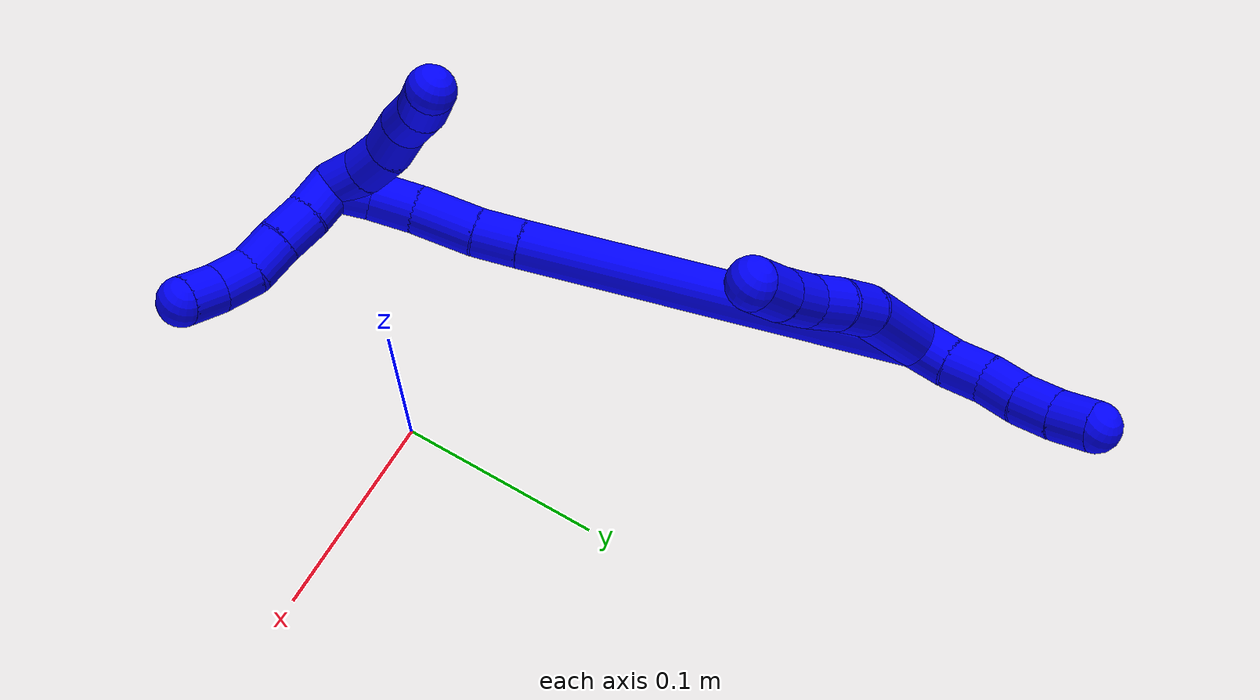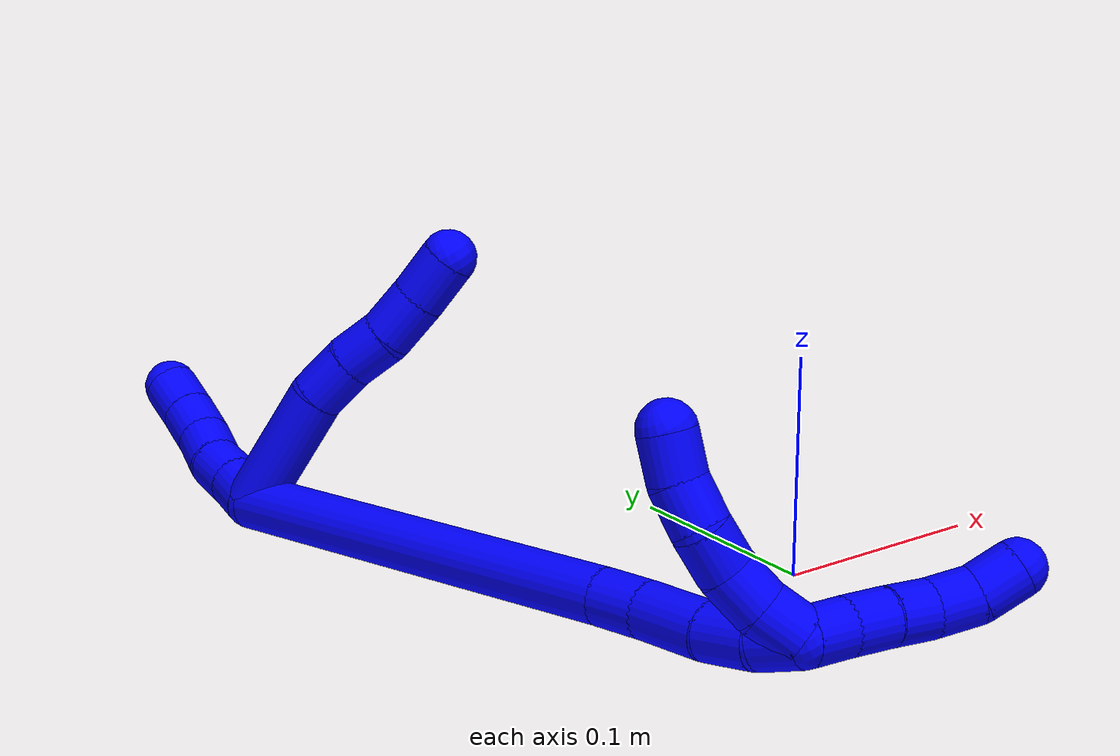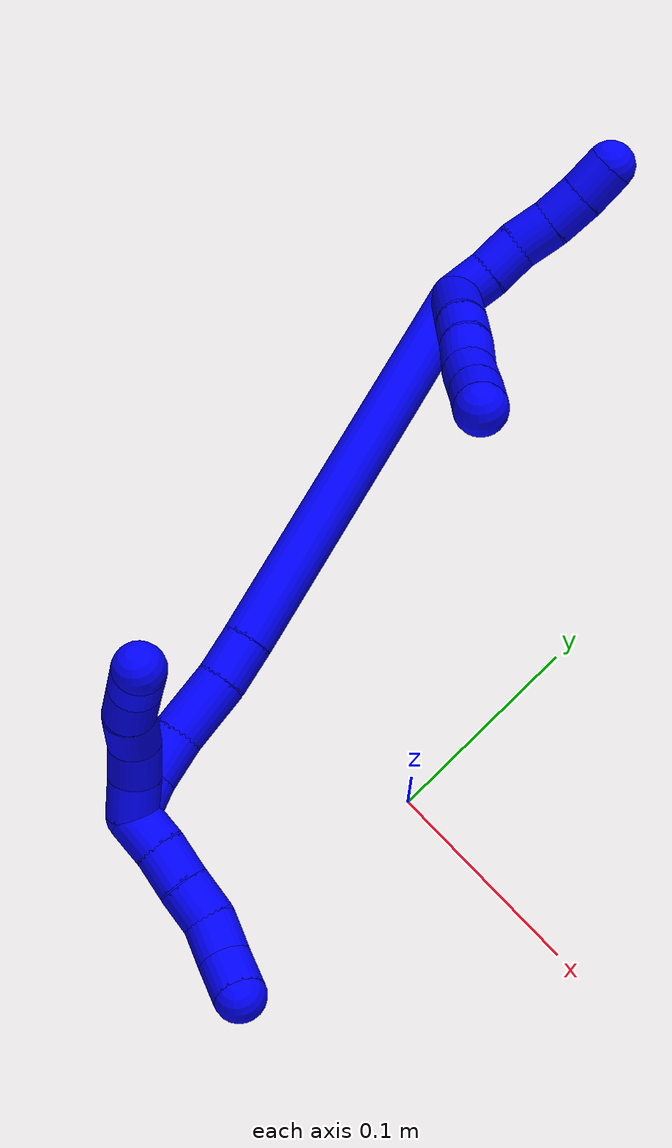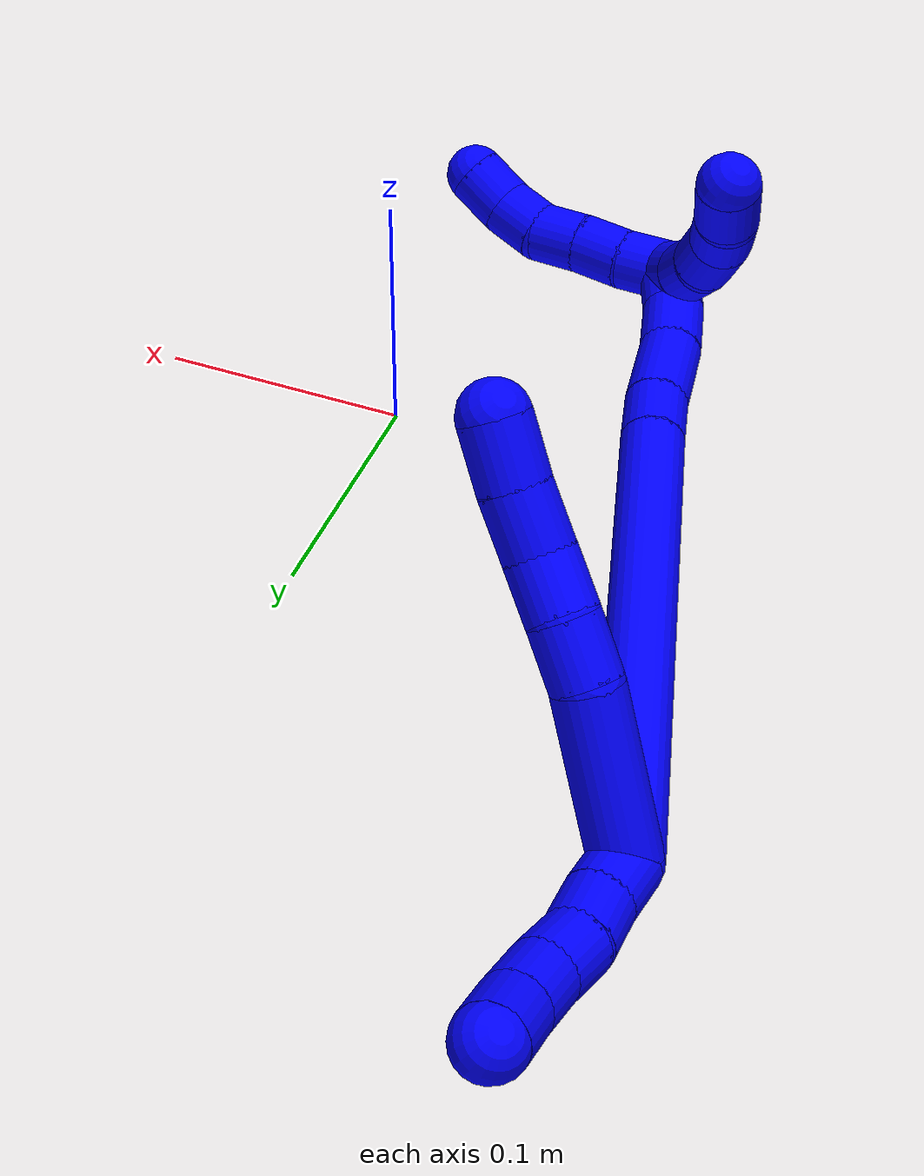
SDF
<sdf version="1.7">
 <world name="default">
  <model name="1">
   <static>0</static>
   <link name="1">
    <collision name="collision-cylinder-e_1_2_8">
     <pose>0.017997 -0.017629 0.016981 0.804104 0.63399 0.277201</pose>
     <geometry><cylinder><radius>0.0125</radius><length>0.060762</length></cylinder></geometry>
     <surface>
      <friction><ode><mu>1.16</mu><mu2>1.16</mu2><slip1>0</slip1><slip2>0</slip2></ode></friction>
      <contact><ode><kp>1e+06</kp><kd>1</kd><max_vel>0</max_vel><min_depth>0.001</min_depth></ode></contact>
     </surface>
    </collision>
    <visual name="visual-cylinder-e_1_2_8">
     <pose>0.017997 -0.017629 0.016981 0.804104 0.63399 0.277201</pose>
     <geometry><cylinder><radius>0.0125</radius><length>0.060762</length></cylinder></geometry>
     <material><ambient>0 0 1 1</ambient></material>
    </visual>
    <collision name="collision-cylinder-e_2_8_9">
     <pose>0.043613 -0.042377 0.038052 1.04939 0.748079 0.446804</pose>
     <geometry><cylinder><radius>0.0125</radius><length>0.022403</length></cylinder></geometry>
     <surface>
      <friction><ode><mu>1.16</mu><mu2>1.16</mu2><slip1>0</slip1><slip2>0</slip2></ode></friction>
      <contact><ode><kp>1e+06</kp><kd>1</kd><max_vel>0</max_vel><min_depth>0.001</min_depth></ode></contact>
     </surface>
    </collision>
    <visual name="visual-cylinder-e_2_8_9">
     <pose>0.043613 -0.042377 0.038052 1.04939 0.748079 0.446804</pose>
     <geometry><cylinder><radius>0.0125</radius><length>0.022403</length></cylinder></geometry>
     <material><ambient>0 0 1 1</ambient></material>
    </visual>
    <collision name="collision-cylinder-e_3_9_10">
     <pose>0.058343 -0.056909 0.044534 1.25863 0.73992 0.550387</pose>
     <geometry><cylinder><radius>0.0125</radius><length>0.021094</length></cylinder></geometry>
     <surface>
      <friction><ode><mu>1.16</mu><mu2>1.16</mu2><slip1>0</slip1><slip2>0</slip2></ode></friction>
      <contact><ode><kp>1e+06</kp><kd>1</kd><max_vel>0</max_vel><min_depth>0.001</min_depth></ode></contact>
     </surface>
    </collision>
    <visual name="visual-cylinder-e_3_9_10">
     <pose>0.058343 -0.056909 0.044534 1.25863 0.73992 0.550387</pose>
     <geometry><cylinder><radius>0.0125</radius><length>0.021094</length></cylinder></geometry>
     <material><ambient>0 0 1 1</ambient></material>
    </visual>
    <collision name="collision-cylinder-e_4_10_11">
     <pose>0.07337 -0.071004 0.051713 0.949192 0.766576 0.408549</pose>
     <geometry><cylinder><radius>0.0125</radius><length>0.022823</length></cylinder></geometry>
     <surface>
      <friction><ode><mu>1.16</mu><mu2>1.16</mu2><slip1>0</slip1><slip2>0</slip2></ode></friction>
      <contact><ode><kp>1e+06</kp><kd>1</kd><max_vel>0</max_vel><min_depth>0.001</min_depth></ode></contact>
     </surface>
    </collision>
    <visual name="visual-cylinder-e_4_10_11">
     <pose>0.07337 -0.071004 0.051713 0.949192 0.766576 0.408549</pose>
     <geometry><cylinder><radius>0.0125</radius><length>0.022823</length></cylinder></geometry>
     <material><ambient>0 0 1 1</ambient></material>
    </visual>
    <collision name="collision-cylinder-e_5_11_6">
     <pose>0.088642 -0.084578 0.061948 0.901842 0.697062 0.348311</pose>
     <geometry><cylinder><radius>0.0125</radius><length>0.022919</length></cylinder></geometry>
     <surface>
      <friction><ode><mu>1.16</mu><mu2>1.16</mu2><slip1>0</slip1><slip2>0</slip2></ode></friction>
      <contact><ode><kp>1e+06</kp><kd>1</kd><max_vel>0</max_vel><min_depth>0.001</min_depth></ode></contact>
     </surface>
    </collision>
    <visual name="visual-cylinder-e_5_11_6">
     <pose>0.088642 -0.084578 0.061948 0.901842 0.697062 0.348311</pose>
     <geometry><cylinder><radius>0.0125</radius><length>0.022919</length></cylinder></geometry>
     <material><ambient>0 0 1 1</ambient></material>
    </visual>
    <collision name="collision-cylinder-e_1_2_12">
     <pose>0.0031 0.009049 0.002917 -1.2589 0.315237 -0.230474</pose>
     <geometry><cylinder><radius>0.0125</radius><length>0.02</length></cylinder></geometry>
     <surface>
      <friction><ode><mu>1.16</mu><mu2>1.16</mu2><slip1>0</slip1><slip2>0</slip2></ode></friction>
      <contact><ode><kp>1e+06</kp><kd>1</kd><max_vel>0</max_vel><min_depth>0.001</min_depth></ode></contact>
     </surface>
    </collision>
    <visual name="visual-cylinder-e_1_2_12">
     <pose>0.0031 0.009049 0.002917 -1.2589 0.315237 -0.230474</pose>
     <geometry><cylinder><radius>0.0125</radius><length>0.02</length></cylinder></geometry>
     <material><ambient>0 0 1 1</ambient></material>
    </visual>
    <collision name="collision-cylinder-e_2_12_13">
     <pose>0.008414 0.02709 0.009607 -1.17368 0.22312 -0.148716</pose>
     <geometry><cylinder><radius>0.0125</radius><length>0.02</length></cylinder></geometry>
     <surface>
      <friction><ode><mu>1.16</mu><mu2>1.16</mu2><slip1>0</slip1><slip2>0</slip2></ode></friction>
      <contact><ode><kp>1e+06</kp><kd>1</kd><max_vel>0</max_vel><min_depth>0.001</min_depth></ode></contact>
     </surface>
    </collision>
    <visual name="visual-cylinder-e_2_12_13">
     <pose>0.008414 0.02709 0.009607 -1.17368 0.22312 -0.148716</pose>
     <geometry><cylinder><radius>0.0125</radius><length>0.02</length></cylinder></geometry>
     <material><ambient>0 0 1 1</ambient></material>
    </visual>
    <collision name="collision-cylinder-e_3_13_14">
     <pose>0.014975 0.04424 0.017193 -1.13335 0.449938 -0.289186</pose>
     <geometry><cylinder><radius>0.0125</radius><length>0.02</length></cylinder></geometry>
     <surface>
      <friction><ode><mu>1.16</mu><mu2>1.16</mu2><slip1>0</slip1><slip2>0</slip2></ode></friction>
      <contact><ode><kp>1e+06</kp><kd>1</kd><max_vel>0</max_vel><min_depth>0.001</min_depth></ode></contact>
     </surface>
    </collision>
    <visual name="visual-cylinder-e_3_13_14">
     <pose>0.014975 0.04424 0.017193 -1.13335 0.449938 -0.289186</pose>
     <geometry><cylinder><radius>0.0125</radius><length>0.02</length></cylinder></geometry>
     <material><ambient>0 0 1 1</ambient></material>
    </visual>
    <collision name="collision-cylinder-e_4_14_15">
     <pose>0.022846 0.060408 0.025847 -1.02732 0.359911 -0.204557</pose>
     <geometry><cylinder><radius>0.0125</radius><length>0.02</length></cylinder></geometry>
     <surface>
      <friction><ode><mu>1.16</mu><mu2>1.16</mu2><slip1>0</slip1><slip2>0</slip2></ode></friction>
      <contact><ode><kp>1e+06</kp><kd>1</kd><max_vel>0</max_vel><min_depth>0.001</min_depth></ode></contact>
     </surface>
    </collision>
    <visual name="visual-cylinder-e_4_14_15">
     <pose>0.022846 0.060408 0.025847 -1.02732 0.359911 -0.204557</pose>
     <geometry><cylinder><radius>0.0125</radius><length>0.02</length></cylinder></geometry>
     <material><ambient>0 0 1 1</ambient></material>
    </visual>
    <collision name="collision-cylinder-e_5_15_5">
     <pose>0.029364 0.076044 0.036421 -0.926027 0.304255 -0.152771</pose>
     <geometry><cylinder><radius>0.0125</radius><length>0.02</length></cylinder></geometry>
     <surface>
      <friction><ode><mu>1.16</mu><mu2>1.16</mu2><slip1>0</slip1><slip2>0</slip2></ode></friction>
      <contact><ode><kp>1e+06</kp><kd>1</kd><max_vel>0</max_vel><min_depth>0.001</min_depth></ode></contact>
     </surface>
    </collision>
    <visual name="visual-cylinder-e_5_15_5">
     <pose>0.029364 0.076044 0.036421 -0.926027 0.304255 -0.152771</pose>
     <geometry><cylinder><radius>0.0125</radius><length>0.02</length></cylinder></geometry>
     <material><ambient>0 0 1 1</ambient></material>
    </visual>
    <collision name="collision-cylinder-e_1_2_16">
     <pose>0.012491 -0.095284 -0.028456 1.86101 0.124952 0.167547</pose>
     <geometry><cylinder><radius>0.0125</radius><length>0.200448</length></cylinder></geometry>
     <surface>
      <friction><ode><mu>1.16</mu><mu2>1.16</mu2><slip1>0</slip1><slip2>0</slip2></ode></friction>
      <contact><ode><kp>1e+06</kp><kd>1</kd><max_vel>0</max_vel><min_depth>0.001</min_depth></ode></contact>
     </surface>
    </collision>
    <visual name="visual-cylinder-e_1_2_16">
     <pose>0.012491 -0.095284 -0.028456 1.86101 0.124952 0.167547</pose>
     <geometry><cylinder><radius>0.0125</radius><length>0.200448</length></cylinder></geometry>
     <material><ambient>0 0 1 1</ambient></material>
    </visual>
    <collision name="collision-cylinder-e_2_16_17">
     <pose>0.026064 -0.201428 -0.060245 1.86855 0.09503 0.128486</pose>
     <geometry><cylinder><radius>0.0125</radius><length>0.022822</length></cylinder></geometry>
     <surface>
      <friction><ode><mu>1.16</mu><mu2>1.16</mu2><slip1>0</slip1><slip2>0</slip2></ode></friction>
      <contact><ode><kp>1e+06</kp><kd>1</kd><max_vel>0</max_vel><min_depth>0.001</min_depth></ode></contact>
     </surface>
    </collision>
    <visual name="visual-cylinder-e_2_16_17">
     <pose>0.026064 -0.201428 -0.060245 1.86855 0.09503 0.128486</pose>
     <geometry><cylinder><radius>0.0125</radius><length>0.022822</length></cylinder></geometry>
     <material><ambient>0 0 1 1</ambient></material>
    </visual>
    <collision name="collision-cylinder-e_3_17_18">
     <pose>0.027195 -0.228196 -0.067499 1.81245 0.002937 0.003749</pose>
     <geometry><cylinder><radius>0.0125</radius><length>0.032768</length></cylinder></geometry>
     <surface>
      <friction><ode><mu>1.16</mu><mu2>1.16</mu2><slip1>0</slip1><slip2>0</slip2></ode></friction>
      <contact><ode><kp>1e+06</kp><kd>1</kd><max_vel>0</max_vel><min_depth>0.001</min_depth></ode></contact>
     </surface>
    </collision>
    <visual name="visual-cylinder-e_3_17_18">
     <pose>0.027195 -0.228196 -0.067499 1.81245 0.002937 0.003749</pose>
     <geometry><cylinder><radius>0.0125</radius><length>0.032768</length></cylinder></geometry>
     <material><ambient>0 0 1 1</ambient></material>
    </visual>
    <collision name="collision-cylinder-e_4_18_19">
     <pose>0.028911 -0.255638 -0.073784 1.77298 0.140699 0.172323</pose>
     <geometry><cylinder><radius>0.0125</radius><length>0.023782</length></cylinder></geometry>
     <surface>
      <friction><ode><mu>1.16</mu><mu2>1.16</mu2><slip1>0</slip1><slip2>0</slip2></ode></friction>
      <contact><ode><kp>1e+06</kp><kd>1</kd><max_vel>0</max_vel><min_depth>0.001</min_depth></ode></contact>
     </surface>
    </collision>
    <visual name="visual-cylinder-e_4_18_19">
     <pose>0.028911 -0.255638 -0.073784 1.77298 0.140699 0.172323</pose>
     <geometry><cylinder><radius>0.0125</radius><length>0.023782</length></cylinder></geometry>
     <material><ambient>0 0 1 1</ambient></material>
    </visual>
    <collision name="collision-cylinder-e_5_19_1">
     <pose>0.033953 -0.276631 -0.077111 1.67219 0.341046 0.37669</pose>
     <geometry><cylinder><radius>0.0125</radius><length>0.020179</length></cylinder></geometry>
     <surface>
      <friction><ode><mu>1.16</mu><mu2>1.16</mu2><slip1>0</slip1><slip2>0</slip2></ode></friction>
      <contact><ode><kp>1e+06</kp><kd>1</kd><max_vel>0</max_vel><min_depth>0.001</min_depth></ode></contact>
     </surface>
    </collision>
    <visual name="visual-cylinder-e_5_19_1">
     <pose>0.033953 -0.276631 -0.077111 1.67219 0.341046 0.37669</pose>
     <geometry><cylinder><radius>0.0125</radius><length>0.020179</length></cylinder></geometry>
     <material><ambient>0 0 1 1</ambient></material>
    </visual>
    <collision name="collision-cylinder-e_1_1_20">
     <pose>0.035098 -0.281021 -0.069747 -0.5469 -0.224838 0.063307</pose>
     <geometry><cylinder><radius>0.0125</radius><length>0.02</length></cylinder></geometry>
     <surface>
      <friction><ode><mu>1.16</mu><mu2>1.16</mu2><slip1>0</slip1><slip2>0</slip2></ode></friction>
      <contact><ode><kp>1e+06</kp><kd>1</kd><max_vel>0</max_vel><min_depth>0.001</min_depth></ode></contact>
     </surface>
    </collision>
    <visual name="visual-cylinder-e_1_1_20">
     <pose>0.035098 -0.281021 -0.069747 -0.5469 -0.224838 0.063307</pose>
     <geometry><cylinder><radius>0.0125</radius><length>0.02</length></cylinder></geometry>
     <material><ambient>0 0 1 1</ambient></material>
    </visual>
    <collision name="collision-cylinder-e_2_20_21">
     <pose>0.031755 -0.272476 -0.05211 -0.357264 -0.111613 0.020173</pose>
     <geometry><cylinder><radius>0.0125</radius><length>0.02</length></cylinder></geometry>
     <surface>
      <friction><ode><mu>1.16</mu><mu2>1.16</mu2><slip1>0</slip1><slip2>0</slip2></ode></friction>
      <contact><ode><kp>1e+06</kp><kd>1</kd><max_vel>0</max_vel><min_depth>0.001</min_depth></ode></contact>
     </surface>
    </collision>
    <visual name="visual-cylinder-e_2_20_21">
     <pose>0.031755 -0.272476 -0.05211 -0.357264 -0.111613 0.020173</pose>
     <geometry><cylinder><radius>0.0125</radius><length>0.02</length></cylinder></geometry>
     <material><ambient>0 0 1 1</ambient></material>
    </visual>
    <collision name="collision-cylinder-e_3_21_22">
     <pose>0.030421 -0.267923 -0.03286 -0.108042 -0.022044 0.001192</pose>
     <geometry><cylinder><radius>0.0125</radius><length>0.02</length></cylinder></geometry>
     <surface>
      <friction><ode><mu>1.16</mu><mu2>1.16</mu2><slip1>0</slip1><slip2>0</slip2></ode></friction>
      <contact><ode><kp>1e+06</kp><kd>1</kd><max_vel>0</max_vel><min_depth>0.001</min_depth></ode></contact>
     </surface>
    </collision>
    <visual name="visual-cylinder-e_3_21_22">
     <pose>0.030421 -0.267923 -0.03286 -0.108042 -0.022044 0.001192</pose>
     <geometry><cylinder><radius>0.0125</radius><length>0.02</length></cylinder></geometry>
     <material><ambient>0 0 1 1</ambient></material>
    </visual>
    <collision name="collision-cylinder-e_4_22_23">
     <pose>0.032028 -0.264291 -0.013427 -0.262784 0.183803 -0.024358</pose>
     <geometry><cylinder><radius>0.0125</radius><length>0.02</length></cylinder></geometry>
     <surface>
      <friction><ode><mu>1.16</mu><mu2>1.16</mu2><slip1>0</slip1><slip2>0</slip2></ode></friction>
      <contact><ode><kp>1e+06</kp><kd>1</kd><max_vel>0</max_vel><min_depth>0.001</min_depth></ode></contact>
     </surface>
    </collision>
    <visual name="visual-cylinder-e_4_22_23">
     <pose>0.032028 -0.264291 -0.013427 -0.262784 0.183803 -0.024358</pose>
     <geometry><cylinder><radius>0.0125</radius><length>0.02</length></cylinder></geometry>
     <material><ambient>0 0 1 1</ambient></material>
    </visual>
    <collision name="collision-cylinder-e_5_23_4">
     <pose>0.03708 -0.261229 0.005519 -0.053728 0.328268 -0.008901</pose>
     <geometry><cylinder><radius>0.0125</radius><length>0.02</length></cylinder></geometry>
     <surface>
      <friction><ode><mu>1.16</mu><mu2>1.16</mu2><slip1>0</slip1><slip2>0</slip2></ode></friction>
      <contact><ode><kp>1e+06</kp><kd>1</kd><max_vel>0</max_vel><min_depth>0.001</min_depth></ode></contact>
     </surface>
    </collision>
    <visual name="visual-cylinder-e_5_23_4">
     <pose>0.03708 -0.261229 0.005519 -0.053728 0.328268 -0.008901</pose>
     <geometry><cylinder><radius>0.0125</radius><length>0.02</length></cylinder></geometry>
     <material><ambient>0 0 1 1</ambient></material>
    </visual>
    <collision name="collision-cylinder-e_1_1_24">
     <pose>0.04647 -0.287212 -0.081967 2.86132 1.15363 2.71458</pose>
     <geometry><cylinder><radius>0.0125</radius><length>0.02</length></cylinder></geometry>
     <surface>
      <friction><ode><mu>1.16</mu><mu2>1.16</mu2><slip1>0</slip1><slip2>0</slip2></ode></friction>
      <contact><ode><kp>1e+06</kp><kd>1</kd><max_vel>0</max_vel><min_depth>0.001</min_depth></ode></contact>
     </surface>
    </collision>
    <visual name="visual-cylinder-e_1_1_24">
     <pose>0.04647 -0.287212 -0.081967 2.86132 1.15363 2.71458</pose>
     <geometry><cylinder><radius>0.0125</radius><length>0.02</length></cylinder></geometry>
     <material><ambient>0 0 1 1</ambient></material>
    </visual>
    <collision name="collision-cylinder-e_2_24_25">
     <pose>0.064587 -0.290638 -0.089621 2.59166 1.11395 2.29088</pose>
     <geometry><cylinder><radius>0.0125</radius><length>0.02</length></cylinder></geometry>
     <surface>
      <friction><ode><mu>1.16</mu><mu2>1.16</mu2><slip1>0</slip1><slip2>0</slip2></ode></friction>
      <contact><ode><kp>1e+06</kp><kd>1</kd><max_vel>0</max_vel><min_depth>0.001</min_depth></ode></contact>
     </surface>
    </collision>
    <visual name="visual-cylinder-e_2_24_25">
     <pose>0.064587 -0.290638 -0.089621 2.59166 1.11395 2.29088</pose>
     <geometry><cylinder><radius>0.0125</radius><length>0.02</length></cylinder></geometry>
     <material><ambient>0 0 1 1</ambient></material>
    </visual>
    <collision name="collision-cylinder-e_3_25_26">
     <pose>0.08247 -0.294583 -0.097619 2.77229 1.09921 2.54967</pose>
     <geometry><cylinder><radius>0.0125</radius><length>0.02</length></cylinder></geometry>
     <surface>
      <friction><ode><mu>1.16</mu><mu2>1.16</mu2><slip1>0</slip1><slip2>0</slip2></ode></friction>
      <contact><ode><kp>1e+06</kp><kd>1</kd><max_vel>0</max_vel><min_depth>0.001</min_depth></ode></contact>
     </surface>
    </collision>
    <visual name="visual-cylinder-e_3_25_26">
     <pose>0.08247 -0.294583 -0.097619 2.77229 1.09921 2.54967</pose>
     <geometry><cylinder><radius>0.0125</radius><length>0.02</length></cylinder></geometry>
     <material><ambient>0 0 1 1</ambient></material>
    </visual>
    <collision name="collision-cylinder-e_4_26_27">
     <pose>0.10003 -0.300634 -0.104242 2.06675 1.04547 1.53713</pose>
     <geometry><cylinder><radius>0.0125</radius><length>0.02</length></cylinder></geometry>
     <surface>
      <friction><ode><mu>1.16</mu><mu2>1.16</mu2><slip1>0</slip1><slip2>0</slip2></ode></friction>
      <contact><ode><kp>1e+06</kp><kd>1</kd><max_vel>0</max_vel><min_depth>0.001</min_depth></ode></contact>
     </surface>
    </collision>
    <visual name="visual-cylinder-e_4_26_27">
     <pose>0.10003 -0.300634 -0.104242 2.06675 1.04547 1.53713</pose>
     <geometry><cylinder><radius>0.0125</radius><length>0.02</length></cylinder></geometry>
     <material><ambient>0 0 1 1</ambient></material>
    </visual>
    <collision name="collision-cylinder-e_5_27_3">
     <pose>0.117658 -0.309426 -0.106162 1.46478 1.11453 1.02151</pose>
     <geometry><cylinder><radius>0.0125</radius><length>0.02</length></cylinder></geometry>
     <surface>
      <friction><ode><mu>1.16</mu><mu2>1.16</mu2><slip1>0</slip1><slip2>0</slip2></ode></friction>
      <contact><ode><kp>1e+06</kp><kd>1</kd><max_vel>0</max_vel><min_depth>0.001</min_depth></ode></contact>
     </surface>
    </collision>
    <visual name="visual-cylinder-e_5_27_3">
     <pose>0.117658 -0.309426 -0.106162 1.46478 1.11453 1.02151</pose>
     <geometry><cylinder><radius>0.0125</radius><length>0.02</length></cylinder></geometry>
     <material><ambient>0 0 1 1</ambient></material>
    </visual>
    <collision name="collision-sphere-3">
     <pose>0.126635 -0.313807 -0.105696 0 -0 0</pose>
     <geometry><sphere><radius>0.0125</radius></sphere></geometry>
     <surface>
      <friction><ode><mu>1.16</mu><mu2>1.16</mu2><slip1>0</slip1><slip2>0</slip2></ode></friction>
      <contact><ode><kp>1e+06</kp><kd>1</kd><max_vel>0</max_vel><min_depth>0.001</min_depth></ode></contact>
     </surface>
    </collision>
    <visual name="visual-sphere-3">
     <pose>0.126635 -0.313807 -0.105696 0 -0 0</pose>
     <geometry><sphere><radius>0.0125</radius></sphere></geometry>
     <material><ambient>0 0 1 1</ambient></material>
    </visual>
    <collision name="collision-sphere-27">
     <pose>0.108681 -0.305044 -0.106629 0 -0 0</pose>
     <geometry><sphere><radius>0.0125</radius></sphere></geometry>
     <surface>
      <friction><ode><mu>1.16</mu><mu2>1.16</mu2><slip1>0</slip1><slip2>0</slip2></ode></friction>
      <contact><ode><kp>1e+06</kp><kd>1</kd><max_vel>0</max_vel><min_depth>0.001</min_depth></ode></contact>
     </surface>
    </collision>
    <visual name="visual-sphere-27">
     <pose>0.108681 -0.305044 -0.106629 0 -0 0</pose>
     <geometry><sphere><radius>0.0125</radius></sphere></geometry>
     <material><ambient>0 0 1 1</ambient></material>
    </visual>
    <collision name="collision-sphere-26">
     <pose>0.091378 -0.296223 -0.101856 0 -0 0</pose>
     <geometry><sphere><radius>0.0125</radius></sphere></geometry>
     <surface>
      <friction><ode><mu>1.16</mu><mu2>1.16</mu2><slip1>0</slip1><slip2>0</slip2></ode></friction>
      <contact><ode><kp>1e+06</kp><kd>1</kd><max_vel>0</max_vel><min_depth>0.001</min_depth></ode></contact>
     </surface>
    </collision>
    <visual name="visual-sphere-26">
     <pose>0.091378 -0.296223 -0.101856 0 -0 0</pose>
     <geometry><sphere><radius>0.0125</radius></sphere></geometry>
     <material><ambient>0 0 1 1</ambient></material>
    </visual>
    <collision name="collision-sphere-25">
     <pose>0.073561 -0.292943 -0.093382 0 -0 0</pose>
     <geometry><sphere><radius>0.0125</radius></sphere></geometry>
     <surface>
      <friction><ode><mu>1.16</mu><mu2>1.16</mu2><slip1>0</slip1><slip2>0</slip2></ode></friction>
      <contact><ode><kp>1e+06</kp><kd>1</kd><max_vel>0</max_vel><min_depth>0.001</min_depth></ode></contact>
     </surface>
    </collision>
    <visual name="visual-sphere-25">
     <pose>0.073561 -0.292943 -0.093382 0 -0 0</pose>
     <geometry><sphere><radius>0.0125</radius></sphere></geometry>
     <material><ambient>0 0 1 1</ambient></material>
    </visual>
    <collision name="collision-sphere-24">
     <pose>0.055612 -0.288332 -0.08586 0 -0 0</pose>
     <geometry><sphere><radius>0.0125</radius></sphere></geometry>
     <surface>
      <friction><ode><mu>1.16</mu><mu2>1.16</mu2><slip1>0</slip1><slip2>0</slip2></ode></friction>
      <contact><ode><kp>1e+06</kp><kd>1</kd><max_vel>0</max_vel><min_depth>0.001</min_depth></ode></contact>
     </surface>
    </collision>
    <visual name="visual-sphere-24">
     <pose>0.055612 -0.288332 -0.08586 0 -0 0</pose>
     <geometry><sphere><radius>0.0125</radius></sphere></geometry>
     <material><ambient>0 0 1 1</ambient></material>
    </visual>
    <collision name="collision-sphere-4">
     <pose>0.040304 -0.26072 0.014972 0 -0 0</pose>
     <geometry><sphere><radius>0.0125</radius></sphere></geometry>
     <surface>
      <friction><ode><mu>1.16</mu><mu2>1.16</mu2><slip1>0</slip1><slip2>0</slip2></ode></friction>
      <contact><ode><kp>1e+06</kp><kd>1</kd><max_vel>0</max_vel><min_depth>0.001</min_depth></ode></contact>
     </surface>
    </collision>
    <visual name="visual-sphere-4">
     <pose>0.040304 -0.26072 0.014972 0 -0 0</pose>
     <geometry><sphere><radius>0.0125</radius></sphere></geometry>
     <material><ambient>0 0 1 1</ambient></material>
    </visual>
    <collision name="collision-sphere-23">
     <pose>0.033856 -0.261737 -0.003933 0 -0 0</pose>
     <geometry><sphere><radius>0.0125</radius></sphere></geometry>
     <surface>
      <friction><ode><mu>1.16</mu><mu2>1.16</mu2><slip1>0</slip1><slip2>0</slip2></ode></friction>
      <contact><ode><kp>1e+06</kp><kd>1</kd><max_vel>0</max_vel><min_depth>0.001</min_depth></ode></contact>
     </surface>
    </collision>
    <visual name="visual-sphere-23">
     <pose>0.033856 -0.261737 -0.003933 0 -0 0</pose>
     <geometry><sphere><radius>0.0125</radius></sphere></geometry>
     <material><ambient>0 0 1 1</ambient></material>
    </visual>
    <collision name="collision-sphere-22">
     <pose>0.0302 -0.266845 -0.022921 0 -0 0</pose>
     <geometry><sphere><radius>0.0125</radius></sphere></geometry>
     <surface>
      <friction><ode><mu>1.16</mu><mu2>1.16</mu2><slip1>0</slip1><slip2>0</slip2></ode></friction>
      <contact><ode><kp>1e+06</kp><kd>1</kd><max_vel>0</max_vel><min_depth>0.001</min_depth></ode></contact>
     </surface>
    </collision>
    <visual name="visual-sphere-22">
     <pose>0.0302 -0.266845 -0.022921 0 -0 0</pose>
     <geometry><sphere><radius>0.0125</radius></sphere></geometry>
     <material><ambient>0 0 1 1</ambient></material>
    </visual>
    <collision name="collision-sphere-21">
     <pose>0.030641 -0.269001 -0.0428 0 -0 0</pose>
     <geometry><sphere><radius>0.0125</radius></sphere></geometry>
     <surface>
      <friction><ode><mu>1.16</mu><mu2>1.16</mu2><slip1>0</slip1><slip2>0</slip2></ode></friction>
      <contact><ode><kp>1e+06</kp><kd>1</kd><max_vel>0</max_vel><min_depth>0.001</min_depth></ode></contact>
     </surface>
    </collision>
    <visual name="visual-sphere-21">
     <pose>0.030641 -0.269001 -0.0428 0 -0 0</pose>
     <geometry><sphere><radius>0.0125</radius></sphere></geometry>
     <material><ambient>0 0 1 1</ambient></material>
    </visual>
    <collision name="collision-sphere-20">
     <pose>0.032869 -0.275952 -0.06142 0 -0 0</pose>
     <geometry><sphere><radius>0.0125</radius></sphere></geometry>
     <surface>
      <friction><ode><mu>1.16</mu><mu2>1.16</mu2><slip1>0</slip1><slip2>0</slip2></ode></friction>
      <contact><ode><kp>1e+06</kp><kd>1</kd><max_vel>0</max_vel><min_depth>0.001</min_depth></ode></contact>
     </surface>
    </collision>
    <visual name="visual-sphere-20">
     <pose>0.032869 -0.275952 -0.06142 0 -0 0</pose>
     <geometry><sphere><radius>0.0125</radius></sphere></geometry>
     <material><ambient>0 0 1 1</ambient></material>
    </visual>
    <collision name="collision-sphere-6">
     <pose>0.095999 -0.091471 0.067397 0 -0 0</pose>
     <geometry><sphere><radius>0.0125</radius></sphere></geometry>
     <surface>
      <friction><ode><mu>1.16</mu><mu2>1.16</mu2><slip1>0</slip1><slip2>0</slip2></ode></friction>
      <contact><ode><kp>1e+06</kp><kd>1</kd><max_vel>0</max_vel><min_depth>0.001</min_depth></ode></contact>
     </surface>
    </collision>
    <visual name="visual-sphere-6">
     <pose>0.095999 -0.091471 0.067397 0 -0 0</pose>
     <geometry><sphere><radius>0.0125</radius></sphere></geometry>
     <material><ambient>0 0 1 1</ambient></material>
    </visual>
    <collision name="collision-sphere-11">
     <pose>0.081286 -0.077686 0.056499 0 -0 0</pose>
     <geometry><sphere><radius>0.0125</radius></sphere></geometry>
     <surface>
      <friction><ode><mu>1.16</mu><mu2>1.16</mu2><slip1>0</slip1><slip2>0</slip2></ode></friction>
      <contact><ode><kp>1e+06</kp><kd>1</kd><max_vel>0</max_vel><min_depth>0.001</min_depth></ode></contact>
     </surface>
    </collision>
    <visual name="visual-sphere-11">
     <pose>0.081286 -0.077686 0.056499 0 -0 0</pose>
     <geometry><sphere><radius>0.0125</radius></sphere></geometry>
     <material><ambient>0 0 1 1</ambient></material>
    </visual>
    <collision name="collision-sphere-10">
     <pose>0.065454 -0.064322 0.046926 0 -0 0</pose>
     <geometry><sphere><radius>0.0125</radius></sphere></geometry>
     <surface>
      <friction><ode><mu>1.16</mu><mu2>1.16</mu2><slip1>0</slip1><slip2>0</slip2></ode></friction>
      <contact><ode><kp>1e+06</kp><kd>1</kd><max_vel>0</max_vel><min_depth>0.001</min_depth></ode></contact>
     </surface>
    </collision>
    <visual name="visual-sphere-10">
     <pose>0.065454 -0.064322 0.046926 0 -0 0</pose>
     <geometry><sphere><radius>0.0125</radius></sphere></geometry>
     <material><ambient>0 0 1 1</ambient></material>
    </visual>
    <collision name="collision-sphere-9">
     <pose>0.051232 -0.049496 0.042142 0 -0 0</pose>
     <geometry><sphere><radius>0.0125</radius></sphere></geometry>
     <surface>
      <friction><ode><mu>1.16</mu><mu2>1.16</mu2><slip1>0</slip1><slip2>0</slip2></ode></friction>
      <contact><ode><kp>1e+06</kp><kd>1</kd><max_vel>0</max_vel><min_depth>0.001</min_depth></ode></contact>
     </surface>
    </collision>
    <visual name="visual-sphere-9">
     <pose>0.051232 -0.049496 0.042142 0 -0 0</pose>
     <geometry><sphere><radius>0.0125</radius></sphere></geometry>
     <material><ambient>0 0 1 1</ambient></material>
    </visual>
    <collision name="collision-sphere-2">
     <geometry><sphere><radius>0.0125</radius></sphere></geometry>
     <surface>
      <friction><ode><mu>1.16</mu><mu2>1.16</mu2><slip1>0</slip1><slip2>0</slip2></ode></friction>
      <contact><ode><kp>1e+06</kp><kd>1</kd><max_vel>0</max_vel><min_depth>0.001</min_depth></ode></contact>
     </surface>
    </collision>
    <visual name="visual-sphere-2">
     <geometry><sphere><radius>0.0125</radius></sphere></geometry>
     <material><ambient>0 0 1 1</ambient></material>
    </visual>
    <collision name="collision-sphere-19">
     <pose>0.030578 -0.267172 -0.076148 0 -0 0</pose>
     <geometry><sphere><radius>0.0125</radius></sphere></geometry>
     <surface>
      <friction><ode><mu>1.16</mu><mu2>1.16</mu2><slip1>0</slip1><slip2>0</slip2></ode></friction>
      <contact><ode><kp>1e+06</kp><kd>1</kd><max_vel>0</max_vel><min_depth>0.001</min_depth></ode></contact>
     </surface>
    </collision>
    <visual name="visual-sphere-19">
     <pose>0.030578 -0.267172 -0.076148 0 -0 0</pose>
     <geometry><sphere><radius>0.0125</radius></sphere></geometry>
     <material><ambient>0 0 1 1</ambient></material>
    </visual>
    <collision name="collision-sphere-8">
     <pose>0.035993 -0.035257 0.033962 0 -0 0</pose>
     <geometry><sphere><radius>0.0125</radius></sphere></geometry>
     <surface>
      <friction><ode><mu>1.16</mu><mu2>1.16</mu2><slip1>0</slip1><slip2>0</slip2></ode></friction>
      <contact><ode><kp>1e+06</kp><kd>1</kd><max_vel>0</max_vel><min_depth>0.001</min_depth></ode></contact>
     </surface>
    </collision>
    <visual name="visual-sphere-8">
     <pose>0.035993 -0.035257 0.033962 0 -0 0</pose>
     <geometry><sphere><radius>0.0125</radius></sphere></geometry>
     <material><ambient>0 0 1 1</ambient></material>
    </visual>
    <collision name="collision-sphere-12">
     <pose>0.006201 0.018097 0.005835 0 -0 0</pose>
     <geometry><sphere><radius>0.0125</radius></sphere></geometry>
     <surface>
      <friction><ode><mu>1.16</mu><mu2>1.16</mu2><slip1>0</slip1><slip2>0</slip2></ode></friction>
      <contact><ode><kp>1e+06</kp><kd>1</kd><max_vel>0</max_vel><min_depth>0.001</min_depth></ode></contact>
     </surface>
    </collision>
    <visual name="visual-sphere-12">
     <pose>0.006201 0.018097 0.005835 0 -0 0</pose>
     <geometry><sphere><radius>0.0125</radius></sphere></geometry>
     <material><ambient>0 0 1 1</ambient></material>
    </visual>
    <collision name="collision-sphere-13">
     <pose>0.010626 0.036084 0.013378 0 -0 0</pose>
     <geometry><sphere><radius>0.0125</radius></sphere></geometry>
     <surface>
      <friction><ode><mu>1.16</mu><mu2>1.16</mu2><slip1>0</slip1><slip2>0</slip2></ode></friction>
      <contact><ode><kp>1e+06</kp><kd>1</kd><max_vel>0</max_vel><min_depth>0.001</min_depth></ode></contact>
     </surface>
    </collision>
    <visual name="visual-sphere-13">
     <pose>0.010626 0.036084 0.013378 0 -0 0</pose>
     <geometry><sphere><radius>0.0125</radius></sphere></geometry>
     <material><ambient>0 0 1 1</ambient></material>
    </visual>
    <collision name="collision-sphere-14">
     <pose>0.019324 0.052397 0.021008 0 -0 0</pose>
     <geometry><sphere><radius>0.0125</radius></sphere></geometry>
     <surface>
      <friction><ode><mu>1.16</mu><mu2>1.16</mu2><slip1>0</slip1><slip2>0</slip2></ode></friction>
      <contact><ode><kp>1e+06</kp><kd>1</kd><max_vel>0</max_vel><min_depth>0.001</min_depth></ode></contact>
     </surface>
    </collision>
    <visual name="visual-sphere-14">
     <pose>0.019324 0.052397 0.021008 0 -0 0</pose>
     <geometry><sphere><radius>0.0125</radius></sphere></geometry>
     <material><ambient>0 0 1 1</ambient></material>
    </visual>
    <collision name="collision-sphere-15">
     <pose>0.026368 0.068419 0.030687 0 -0 0</pose>
     <geometry><sphere><radius>0.0125</radius></sphere></geometry>
     <surface>
      <friction><ode><mu>1.16</mu><mu2>1.16</mu2><slip1>0</slip1><slip2>0</slip2></ode></friction>
      <contact><ode><kp>1e+06</kp><kd>1</kd><max_vel>0</max_vel><min_depth>0.001</min_depth></ode></contact>
     </surface>
    </collision>
    <visual name="visual-sphere-15">
     <pose>0.026368 0.068419 0.030687 0 -0 0</pose>
     <geometry><sphere><radius>0.0125</radius></sphere></geometry>
     <material><ambient>0 0 1 1</ambient></material>
    </visual>
    <collision name="collision-sphere-5">
     <pose>0.03236 0.083669 0.042155 0 -0 0</pose>
     <geometry><sphere><radius>0.0125</radius></sphere></geometry>
     <surface>
      <friction><ode><mu>1.16</mu><mu2>1.16</mu2><slip1>0</slip1><slip2>0</slip2></ode></friction>
      <contact><ode><kp>1e+06</kp><kd>1</kd><max_vel>0</max_vel><min_depth>0.001</min_depth></ode></contact>
     </surface>
    </collision>
    <visual name="visual-sphere-5">
     <pose>0.03236 0.083669 0.042155 0 -0 0</pose>
     <geometry><sphere><radius>0.0125</radius></sphere></geometry>
     <material><ambient>0 0 1 1</ambient></material>
    </visual>
    <collision name="collision-sphere-16">
     <pose>0.024981 -0.190569 -0.056913 0 -0 0</pose>
     <geometry><sphere><radius>0.0125</radius></sphere></geometry>
     <surface>
      <friction><ode><mu>1.16</mu><mu2>1.16</mu2><slip1>0</slip1><slip2>0</slip2></ode></friction>
      <contact><ode><kp>1e+06</kp><kd>1</kd><max_vel>0</max_vel><min_depth>0.001</min_depth></ode></contact>
     </surface>
    </collision>
    <visual name="visual-sphere-16">
     <pose>0.024981 -0.190569 -0.056913 0 -0 0</pose>
     <geometry><sphere><radius>0.0125</radius></sphere></geometry>
     <material><ambient>0 0 1 1</ambient></material>
    </visual>
    <collision name="collision-sphere-17">
     <pose>0.027147 -0.212288 -0.063578 0 -0 0</pose>
     <geometry><sphere><radius>0.0125</radius></sphere></geometry>
     <surface>
      <friction><ode><mu>1.16</mu><mu2>1.16</mu2><slip1>0</slip1><slip2>0</slip2></ode></friction>
      <contact><ode><kp>1e+06</kp><kd>1</kd><max_vel>0</max_vel><min_depth>0.001</min_depth></ode></contact>
     </surface>
    </collision>
    <visual name="visual-sphere-17">
     <pose>0.027147 -0.212288 -0.063578 0 -0 0</pose>
     <geometry><sphere><radius>0.0125</radius></sphere></geometry>
     <material><ambient>0 0 1 1</ambient></material>
    </visual>
    <collision name="collision-sphere-18">
     <pose>0.027243 -0.244104 -0.07142 0 -0 0</pose>
     <geometry><sphere><radius>0.0125</radius></sphere></geometry>
     <surface>
      <friction><ode><mu>1.16</mu><mu2>1.16</mu2><slip1>0</slip1><slip2>0</slip2></ode></friction>
      <contact><ode><kp>1e+06</kp><kd>1</kd><max_vel>0</max_vel><min_depth>0.001</min_depth></ode></contact>
     </surface>
    </collision>
    <visual name="visual-sphere-18">
     <pose>0.027243 -0.244104 -0.07142 0 -0 0</pose>
     <geometry><sphere><radius>0.0125</radius></sphere></geometry>
     <material><ambient>0 0 1 1</ambient></material>
    </visual>
    <collision name="collision-sphere-1">
     <pose>0.037328 -0.286091 -0.078073 0 -0 0</pose>
     <geometry><sphere><radius>0.0125</radius></sphere></geometry>
     <surface>
      <friction><ode><mu>1.16</mu><mu2>1.16</mu2><slip1>0</slip1><slip2>0</slip2></ode></friction>
      <contact><ode><kp>1e+06</kp><kd>1</kd><max_vel>0</max_vel><min_depth>0.001</min_depth></ode></contact>
     </surface>
    </collision>
    <visual name="visual-sphere-1">
     <pose>0.037328 -0.286091 -0.078073 0 -0 0</pose>
     <geometry><sphere><radius>0.0125</radius></sphere></geometry>
     <material><ambient>0 0 1 1</ambient></material>
    </visual>
    <inertial>
     <pose>0.033994 -0.135824 -0.024244 0 -0 0</pose>
     <mass>0.75</mass>
     <inertia>
      <ixx>0.000849</ixx>
      <ixy>0</ixy>
      <ixz>0</ixz>
      <iyy>-4.3e-05</iyy>
      <iyz>0</iyz>
      <izz>0.000561</izz>
     </inertia>
    </inertial>
   </link>
   <pose>-0.160773 0.190025 0.012194 -0.2785 -0.345426 0.151469</pose>
  </model>
 </world>
</sdf>
